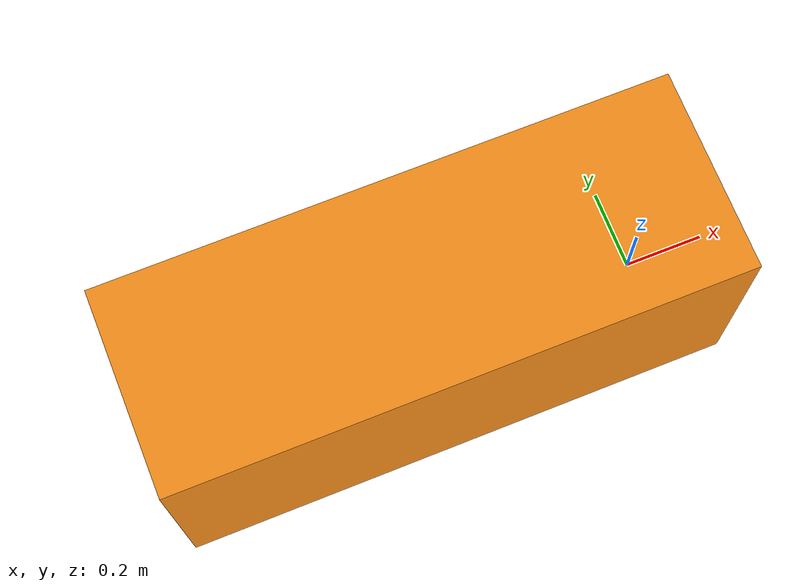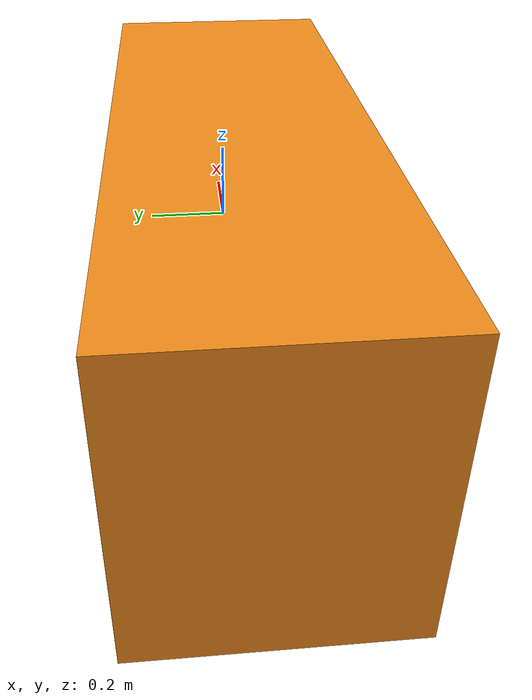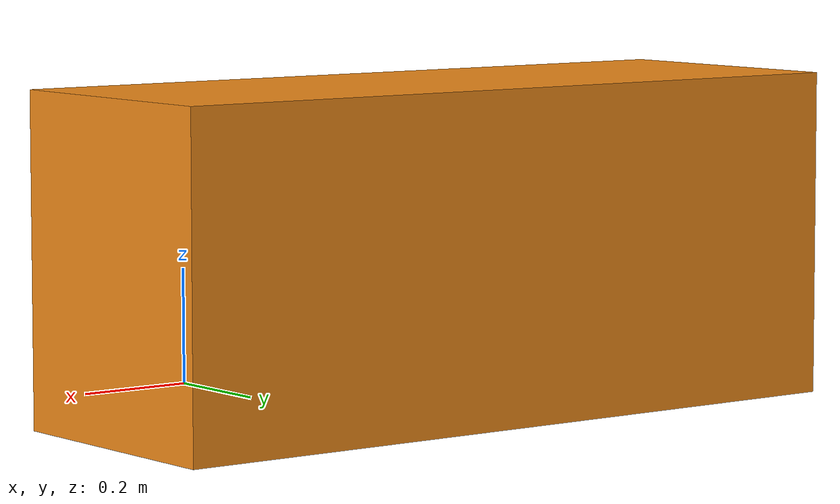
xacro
<?xml version="1.0"?>

<robot xmlns:xacro="http://www.ros.org/wiki/xacro" name = "table">
  <link name="world"/>

  <joint name="fixed" type="fixed">
    <parent link="world"/>
    <child link="my_box"/>
  </joint>

  <link name="my_box">
    <inertial>
      <origin xyz="0 0 0" />
      <mass value="1.0" />
      <inertia  ixx="1.0" ixy="0.0"  ixz="0.0"  iyy="1.0"  iyz="0.0"  izz="1.0" />
    </inertial>
    <visual>
      <origin xyz="-0.55 0 0.2"/>
      <geometry>
        <box size="1.4 0.5 0.6" />
      </geometry>
    </visual>
    <collision>
      <origin xyz="-0.55 0 0.2"/>
      <geometry>
        <box size="1.4 0.5 0.6" />
      </geometry>
    </collision>
  </link>
  <gazebo reference="my_box">
    <material>Gazebo/Orange</material>
  </gazebo>
<gazebo>
    <static>true</static>
</gazebo>
</robot>
